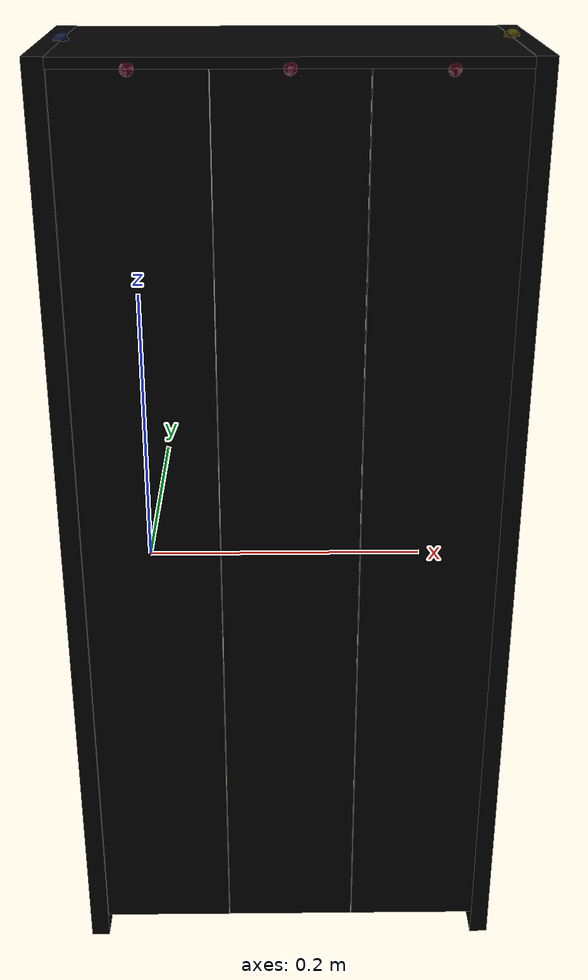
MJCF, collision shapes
<mujoco model="bookcase_flaerke_0403">
    <custom>
        <numeric data="-0.60657 0.18096 0.003607 0.706613 -0.706613 -0.026427 0.026427" name="0_part0_initpos"/>
        <numeric data="0.608335 -0.261698 0.003607 -0.005325 -0.0 0.0 -0.999986" name="10_part10_initpos"/>
        <numeric data="0.610186 -0.055603 0.003607 0.0 0.01776 -0.999842 0.0" name="9_part9_initpos"/>
        <numeric data="0.562264 0.239577 0.003607 0.693848 -0.0 -0.0 0.720122" name="8_part8_initpos"/>
        <numeric data="-0.122719 0.349128 0.003607 0.999813 -0.0 -0.0 -0.019363" name="7_part7_initpos"/>
        <numeric data="-0.432902 0.235927 0.003607 0.725286 0.0 -0.0 0.688448" name="6_part6_initpos"/>
        <numeric data="0.061007 0.132511 0.007103 0.707107 0.000528 0.707107 -0.000528" name="5_part5_initpos"/>
        <numeric data="0.017788 -0.371327 0.007244 0.70708 0.006167 -0.70708 0.006167" name="4_part4_initpos"/>
        <numeric data="0.001697 -0.057273 0.003607 0.501624 -0.501624 -0.498371 0.498371" name="3_part3_initpos"/>
        <numeric data="0.257014 0.346324 0.003607 1.0 0.0 -0.0 9.5e-05" name="2_part2_initpos"/>
        <numeric data="-0.016436 -0.19 0.003607 0.5 -0.5 -0.5 0.5" name="1_part1_initpos"/>
    </custom>
    <asset>
        <mesh file="bookcase_flaerke_0403/0.stl" name="part0"
              scale="0.00028638000000000003 0.00028638000000000003 0.00028638000000000003"/>
        <mesh file="bookcase_flaerke_0403/9.stl" name="part9"
              scale="0.00028638000000000003 0.00028638000000000003 0.00028638000000000003"/>
        <mesh file="bookcase_flaerke_0403/8.stl" name="part8"
              scale="0.00028638000000000003 0.00028638000000000003 0.00028638000000000003"/>
        <mesh file="bookcase_flaerke_0403/7.stl" name="part7"
              scale="0.00028638000000000003 0.00028638000000000003 0.00028638000000000003"/>
        <mesh file="bookcase_flaerke_0403/6.stl" name="part6"
              scale="0.00028638000000000003 0.00028638000000000003 0.00028638000000000003"/>
        <mesh file="bookcase_flaerke_0403/5.stl" name="part5"
              scale="0.00028638000000000003 0.00028638000000000003 0.00028638000000000003"/>
        <mesh file="bookcase_flaerke_0403/4.stl" name="part4"
              scale="0.00028638000000000003 0.00028638000000000003 0.00028638000000000003"/>
        <mesh file="bookcase_flaerke_0403/3.stl" name="part3"
              scale="0.00028638000000000003 0.00028638000000000003 0.00028638000000000003"/>
        <mesh file="bookcase_flaerke_0403/2.stl" name="part2"
              scale="0.00028638000000000003 0.00028638000000000003 0.00028638000000000003"/>
        <mesh file="bookcase_flaerke_0403/10.stl" name="part10"
              scale="0.00028638000000000003 0.00028638000000000003 0.00028638000000000003"/>
        <mesh file="bookcase_flaerke_0403/1.stl" name="part1"
              scale="0.00028638000000000003 0.00028638000000000003 0.00028638000000000003"/>
    </asset>
    <equality>
        <weld active="false" body1="7_part7" body2="5_part5" solimp="1 1 0.5" solref="0.01 0.3"/>
        <weld active="false" body1="3_part3" body2="7_part7" solimp="1 1 0.5" solref="0.01 0.3"/>
        <weld active="false" body1="0_part0" body2="7_part7" solimp="1 1 0.5" solref="0.01 0.3"/>
        <weld active="false" body1="1_part1" body2="7_part7" solimp="1 1 0.5" solref="0.01 0.3"/>
        <weld active="false" body1="2_part2" body2="5_part5" solimp="1 1 0.5" solref="0.01 0.3"/>
        <weld active="false" body1="10_part10" body2="5_part5" solimp="1 1 0.5" solref="0.01 0.3"/>
        <weld active="false" body1="6_part6" body2="5_part5" solimp="1 1 0.5" solref="0.01 0.3"/>
        <weld active="false" body1="8_part8" body2="5_part5" solimp="1 1 0.5" solref="0.01 0.3"/>
        <weld active="false" body1="9_part9" body2="5_part5" solimp="1 1 0.5" solref="0.01 0.3"/>
        <weld active="false" body1="7_part7" body2="4_part4" solimp="1 1 0.5" solref="0.01 0.3"/>
    </equality>
    <worldbody>
        <body name="0_part0" pos="0.0 0.0 0.0" quat="1 0 0 0">
            <geom conaffinity="0" contype="0" density="0" mesh="part0" name="0_part0_mesh" pos="0.0 0.0 0.0"
                  rgba="0.82 0.71 0.55 1" type="mesh"/>
            <site name="0_part0_horizontal_radius_site" pos="0.0 0.0 0.0" quat="1 0 0 0" rgba="0 0 0 0"
                  size="0.00028638000000000003"/>
            <site name="0_part0_top_site" pos="0.0 0.0 0.34915451696301597" quat="1 0 0 0" rgba="0 0 0 0"
                  size="0.00028638000000000003"/>
            <site name="0_part0_bottom_site" pos="0.0 0.0 -0.34915451696301597" quat="1 0 0 0" rgba="0 0 0 0"
                  size="0.00028638000000000003"/>
            <site name="0_part0_corner_site8" pos="-0.051767004220956 0.0036370260000000002 0.34915451696301597"
                  quat="1 0 0 0" rgba="0 0 0 0" size="0.0057276"/>
            <site name="0_part0_corner_site7" pos="0.051767004220956 0.0036370260000000002 0.34915451696301597"
                  quat="1 0 0 0" rgba="0 0 0 0" size="0.0057276"/>
            <site name="0_part0_corner_site6" pos="0.051767004220956 -0.0036370260000000002 0.34915451696301597"
                  quat="1 0 0 0" rgba="0 0 0 0" size="0.0057276"/>
            <site name="0_part0_corner_site5" pos="-0.051767004220956 -0.0036370260000000002 0.34915451696301597"
                  quat="1 0 0 0" rgba="0 0 0 0" size="0.0057276"/>
            <site name="0_part0_corner_site4" pos="-0.051767004220956 0.0036370260000000002 -0.34915451696301597"
                  quat="1 0 0 0" rgba="0 0 0 0" size="0.0057276"/>
            <site name="0_part0_corner_site3" pos="0.051767004220956 0.0036370260000000002 -0.34915451696301597"
                  quat="1 0 0 0" rgba="0 0 0 0" size="0.0057276"/>
            <site name="0_part0_corner_site2" pos="0.051767004220956 -0.0036370260000000002 -0.34915451696301597"
                  quat="1 0 0 0" rgba="0 0 0 0" size="0.0057276"/>
            <site name="0_part0_corner_site1" pos="-0.051767004220956 -0.0036370260000000002 -0.34915451696301597"
                  quat="1 0 0 0" rgba="0 0 0 0" size="0.0057276"/>
            <geom density="50" name="noviz_collision_0_part0_0" pos="0.0 0.0 -1.7182800000000005e-08" quat="1 0 0 0"
                  rgba="0 0 0 0" size="0.051766993854 0.0036370260000000002 0.34915449600000004" solref="0.001 1"
                  type="box"/>
            <site name="back-topshelf,0,180,conn_site3"
                  pos="-0.00025774200000000004 -0.0003150180000000001 0.34886811600000006" quat="1 0 0 0"
                  rgba="0.9019 0.0980 0.2941 0.3" size="0.0057276"/>
        </body>
        <body name="10_part10" pos="0.10389770963865001 0.08365159800000001 -0.205855680878712" quat="1 0 0 0">
            <geom conaffinity="0" contype="0" density="0" mesh="part9" name="10_part10_mesh" pos="0.0 0.0 0.0"
                  rgba="0.82 0.71 0.55 1" type="mesh"/>
            <site name="10_part10_horizontal_radius_site"
                  pos="1.1455200000000001e-10 -1.6896420000000004e-09 5.7276000000000006e-11" quat="1 0 0 0"
                  rgba="0 0 0 0" size="0.00028638000000000003"/>
            <site name="10_part10_top_site" pos="1.1455200000000001e-10 -1.6896420000000004e-09 0.003637030324338"
                  quat="1 0 0 0" rgba="0 0 0 0" size="0.00028638000000000003"/>
            <site name="10_part10_bottom_site" pos="1.1455200000000001e-10 -1.6896420000000004e-09 -0.003637030181148"
                  quat="1 0 0 0" rgba="0 0 0 0" size="0.00028638000000000003"/>
            <site name="10_part10_corner_site8" pos="-0.15639211788544805 0.080014570310358 0.003637030324338"
                  quat="1 0 0 0" rgba="0 0 0 0" size="0.0057276"/>
            <site name="10_part10_corner_site7" pos="0.15639211811455203 0.080014570310358 0.003637030324338"
                  quat="1 0 0 0" rgba="0 0 0 0" size="0.0057276"/>
            <site name="10_part10_corner_site6" pos="0.15639211811455203 -0.08001457368964202 0.003637030324338"
                  quat="1 0 0 0" rgba="0 0 0 0" size="0.0057276"/>
            <site name="10_part10_corner_site5" pos="-0.15639211788544805 -0.08001457368964202 0.003637030324338"
                  quat="1 0 0 0" rgba="0 0 0 0" size="0.0057276"/>
            <site name="10_part10_corner_site4" pos="-0.15639211788544805 0.080014570310358 -0.003637030181148"
                  quat="1 0 0 0" rgba="0 0 0 0" size="0.0057276"/>
            <site name="10_part10_corner_site3" pos="0.15639211811455203 0.080014570310358 -0.003637030181148"
                  quat="1 0 0 0" rgba="0 0 0 0" size="0.0057276"/>
            <site name="10_part10_corner_site2" pos="0.15639211811455203 -0.08001457368964202 -0.003637030181148"
                  quat="1 0 0 0" rgba="0 0 0 0" size="0.0057276"/>
            <site name="10_part10_corner_site1" pos="-0.15639211788544805 -0.08001457368964202 -0.003637030181148"
                  quat="1 0 0 0" rgba="0 0 0 0" size="0.0057276"/>
            <geom density="50" name="noviz_collision_10_part10_0" pos="0.0 0.0 -1.7182800000000005e-08" quat="1 0 0 0"
                  rgba="0 0 0 0" size="0.15639211800000002 0.080014572 0.003637011681" solref="0.001 1" type="box"/>
            <site name="shelf-leftwall,0,180,conn_site2"
                  pos="0.15556258969200001 -0.0018185158638000002 -0.0014834455362000003" quat="0.7071067 0 0.7071068 0"
                  rgba="0.2352 0.7058 0.2941 0.3" size="0.0057276"/>
        </body>
        <body name="9_part9" pos="0.10389770963865001 0.08365159800000001 0.073467912341538" quat="1 0 0 0">
            <geom conaffinity="0" contype="0" density="0" mesh="part8" name="9_part9_mesh" pos="0.0 0.0 0.0"
                  rgba="0.82 0.71 0.55 1" type="mesh"/>
            <site name="9_part9_horizontal_radius_site" pos="1.1455200000000001e-10 -1.6896420000000004e-09 0.0"
                  quat="1 0 0 0" rgba="0 0 0 0" size="0.00028638000000000003"/>
            <site name="9_part9_top_site" pos="1.1455200000000001e-10 -1.6896420000000004e-09 0.003637029493836"
                  quat="1 0 0 0" rgba="0 0 0 0" size="0.00028638000000000003"/>
            <site name="9_part9_bottom_site" pos="1.1455200000000001e-10 -1.6896420000000004e-09 -0.003637029493836"
                  quat="1 0 0 0" rgba="0 0 0 0" size="0.00028638000000000003"/>
            <site name="9_part9_corner_site8" pos="-0.15639211788544805 0.080014570310358 0.003637029493836"
                  quat="1 0 0 0" rgba="0 0 0 0" size="0.0057276"/>
            <site name="9_part9_corner_site7" pos="0.15639211811455203 0.080014570310358 0.003637029493836"
                  quat="1 0 0 0" rgba="0 0 0 0" size="0.0057276"/>
            <site name="9_part9_corner_site6" pos="0.15639211811455203 -0.08001457368964202 0.003637029493836"
                  quat="1 0 0 0" rgba="0 0 0 0" size="0.0057276"/>
            <site name="9_part9_corner_site5" pos="-0.15639211788544805 -0.08001457368964202 0.003637029493836"
                  quat="1 0 0 0" rgba="0 0 0 0" size="0.0057276"/>
            <site name="9_part9_corner_site4" pos="-0.15639211788544805 0.080014570310358 -0.003637029493836"
                  quat="1 0 0 0" rgba="0 0 0 0" size="0.0057276"/>
            <site name="9_part9_corner_site3" pos="0.15639211811455203 0.080014570310358 -0.003637029493836"
                  quat="1 0 0 0" rgba="0 0 0 0" size="0.0057276"/>
            <site name="9_part9_corner_site2" pos="0.15639211811455203 -0.08001457368964202 -0.003637029493836"
                  quat="1 0 0 0" rgba="0 0 0 0" size="0.0057276"/>
            <site name="9_part9_corner_site1" pos="-0.15639211788544805 -0.08001457368964202 -0.003637029493836"
                  quat="1 0 0 0" rgba="0 0 0 0" size="0.0057276"/>
            <geom density="50" name="noviz_collision_9_part9_0" pos="0.0 0.0 0.0" quat="1 0 0 0" rgba="0 0 0 0"
                  size="0.15639211800000002 0.080014572 0.0036370288638000008" solref="0.001 1" type="box"/>
            <site name="shelf-leftwall,0,180,conn_site4"
                  pos="0.156421729692 -0.0018185158638000002 -0.0033048108810000004" quat="0.7071067 0 0.7071068 0"
                  rgba="0.2352 0.7058 0.2941 0.3" size="0.0057276"/>
        </body>
        <body name="8_part8" pos="0.10389770963865001 0.08365159800000001 0.21312971984842202" quat="1 0 0 0">
            <geom conaffinity="0" contype="0" density="0" mesh="part7" name="8_part8_mesh" pos="0.0 0.0 0.0"
                  rgba="0.82 0.71 0.55 1" type="mesh"/>
            <site name="8_part8_horizontal_radius_site" pos="1.1455200000000001e-10 -1.6896420000000004e-09 -0.0"
                  quat="1 0 0 0" rgba="0 0 0 0" size="0.00028638000000000003"/>
            <site name="8_part8_top_site" pos="1.1455200000000001e-10 -1.6896420000000004e-09 0.003637035765558"
                  quat="1 0 0 0" rgba="0 0 0 0" size="0.00028638000000000003"/>
            <site name="8_part8_bottom_site" pos="1.1455200000000001e-10 -1.6896420000000004e-09 -0.003637035794196"
                  quat="1 0 0 0" rgba="0 0 0 0" size="0.00028638000000000003"/>
            <site name="8_part8_corner_site8" pos="-0.15639211788544805 0.080014570310358 0.003637035765558"
                  quat="1 0 0 0" rgba="0 0 0 0" size="0.0057276"/>
            <site name="8_part8_corner_site7" pos="0.15639211811455203 0.080014570310358 0.003637035765558"
                  quat="1 0 0 0" rgba="0 0 0 0" size="0.0057276"/>
            <site name="8_part8_corner_site6" pos="0.15639211811455203 -0.08001457368964202 0.003637035765558"
                  quat="1 0 0 0" rgba="0 0 0 0" size="0.0057276"/>
            <site name="8_part8_corner_site5" pos="-0.15639211788544805 -0.08001457368964202 0.003637035765558"
                  quat="1 0 0 0" rgba="0 0 0 0" size="0.0057276"/>
            <site name="8_part8_corner_site4" pos="-0.15639211788544805 0.080014570310358 -0.003637035794196"
                  quat="1 0 0 0" rgba="0 0 0 0" size="0.0057276"/>
            <site name="8_part8_corner_site3" pos="0.15639211811455203 0.080014570310358 -0.003637035794196"
                  quat="1 0 0 0" rgba="0 0 0 0" size="0.0057276"/>
            <site name="8_part8_corner_site2" pos="0.15639211811455203 -0.08001457368964202 -0.003637035794196"
                  quat="1 0 0 0" rgba="0 0 0 0" size="0.0057276"/>
            <site name="8_part8_corner_site1" pos="-0.15639211788544805 -0.08001457368964202 -0.003637035794196"
                  quat="1 0 0 0" rgba="0 0 0 0" size="0.0057276"/>
            <geom density="50" name="noviz_collision_8_part8_0" pos="0.0 0.0 0.0" quat="1 0 0 0" rgba="0 0 0 0"
                  size="0.15639211800000002 0.080014572 0.0036370288638000008" solref="0.001 1" type="box"/>
            <site name="shelf-leftwall,0,180,conn_site5"
                  pos="0.157280869692 -0.0018185158638000002 0.0010825249914000001" quat="0.7071067 0 0.7071068 0"
                  rgba="0.2352 0.7058 0.2941 0.3" size="0.0057276"/>
        </body>
        <body name="7_part7" pos="0.10389770963865001 0.080014573746918 0.352791508454226" quat="1 0 0 0">
            <geom conaffinity="0" contype="0" density="0" mesh="part6" name="7_part7_mesh" pos="0.0 0.0 0.0"
                  rgba="0.82 0.71 0.55 1" type="mesh"/>
            <site name="7_part7_horizontal_radius_site" pos="1.1455200000000001e-10 0.0 -0.0" quat="1 0 0 0"
                  rgba="0 0 0 0" size="0.00028638000000000003"/>
            <site name="7_part7_top_site" pos="1.1455200000000001e-10 0.0 0.0036370260000000002" quat="1 0 0 0"
                  rgba="0 0 0 0" size="0.00028638000000000003"/>
            <site name="7_part7_bottom_site" pos="1.1455200000000001e-10 0.0 -0.0036370260000000002" quat="1 0 0 0"
                  rgba="0 0 0 0" size="0.00028638000000000003"/>
            <site name="7_part7_corner_site8" pos="-0.15639211788544805 0.08365159974691799 0.0036370260000000002"
                  quat="1 0 0 0" rgba="0 0 0 0" size="0.0057276"/>
            <site name="7_part7_corner_site7" pos="0.15639211811455203 0.08365159974691799 0.0036370260000000002"
                  quat="1 0 0 0" rgba="0 0 0 0" size="0.0057276"/>
            <site name="7_part7_corner_site6" pos="0.15639211811455203 -0.08365159974691799 0.0036370260000000002"
                  quat="1 0 0 0" rgba="0 0 0 0" size="0.0057276"/>
            <site name="7_part7_corner_site5" pos="-0.15639211788544805 -0.08365159974691799 0.0036370260000000002"
                  quat="1 0 0 0" rgba="0 0 0 0" size="0.0057276"/>
            <site name="7_part7_corner_site4" pos="-0.15639211788544805 0.08365159974691799 -0.0036370260000000002"
                  quat="1 0 0 0" rgba="0 0 0 0" size="0.0057276"/>
            <site name="7_part7_corner_site3" pos="0.15639211811455203 0.08365159974691799 -0.0036370260000000002"
                  quat="1 0 0 0" rgba="0 0 0 0" size="0.0057276"/>
            <site name="7_part7_corner_site2" pos="0.15639211811455203 -0.08365159974691799 -0.0036370260000000002"
                  quat="1 0 0 0" rgba="0 0 0 0" size="0.0057276"/>
            <site name="7_part7_corner_site1" pos="-0.15639211788544805 -0.08365159974691799 -0.0036370260000000002"
                  quat="1 0 0 0" rgba="0 0 0 0" size="0.0057276"/>
            <geom density="50" name="noviz_collision_7_part7_0" pos="0.0 0.0 0.0" quat="1 0 0 0" rgba="0 0 0 0"
                  size="0.15639211800000002 0.08365159800000001 0.003637011681" solref="0.001 1" type="box"/>
            <site name="topshelf-leftwall,0,conn_site1"
                  pos="0.15676535705399997 0.017927390863799998 0.0031215849570000002" quat="0.7071067 0 0.7071068 0"
                  rgba="1.0 0.8823 0.0980 0.3" size="0.0057276"/>
            <site name="topshelf-rightwall,0,conn_site1" pos="-0.15653436294600004 0.0 0.002892466638"
                  quat="0.7071067 0 -0.7071068 0" rgba="0.2627 0.3882 0.8470 0.3" size="0.0057276"/>
            <site name="topshelf-back,0,180,conn_site3" pos="-0.10415546094600002 -0.08032959000000002 -0.003923391681"
                  quat="1 0 0 0" rgba="0.9019 0.0980 0.2941 0.3" size="0.0057276"/>
            <site name="topshelf-back,0,180,conn_site2"
                  pos="0.00018184557240000002 -0.08004321000000002 -0.003637011681" quat="1 0 0 0"
                  rgba="0.9019 0.0980 0.2941 0.3" size="0.0057276"/>
            <site name="topshelf-back,0,180,conn_site1" pos="0.105159681054 -0.080014572 -0.004553413362" quat="1 0 0 0"
                  rgba="0.9019 0.0980 0.2941 0.3" size="0.0057276"/>
        </body>
        <body name="6_part6" pos="0.10389770963865001 0.08365159800000001 -0.345517484003982" quat="1 0 0 0">
            <geom conaffinity="0" contype="0" density="0" mesh="part5" name="6_part6_mesh" pos="0.0 0.0 0.0"
                  rgba="0.82 0.71 0.55 1" type="mesh"/>
            <site name="6_part6_horizontal_radius_site"
                  pos="1.1455200000000001e-10 -1.6896420000000004e-09 -2.8638000000000003e-11" quat="1 0 0 0"
                  rgba="0 0 0 0" size="0.00028638000000000003"/>
            <site name="6_part6_top_site" pos="1.1455200000000001e-10 -1.6896420000000004e-09 0.0036370264295700005"
                  quat="1 0 0 0" rgba="0 0 0 0" size="0.00028638000000000003"/>
            <site name="6_part6_bottom_site" pos="1.1455200000000001e-10 -1.6896420000000004e-09 -0.0036370264868459995"
                  quat="1 0 0 0" rgba="0 0 0 0" size="0.00028638000000000003"/>
            <site name="6_part6_corner_site8" pos="-0.15639211788544805 0.080014570310358 0.0036370264295700005"
                  quat="1 0 0 0" rgba="0 0 0 0" size="0.0057276"/>
            <site name="6_part6_corner_site7" pos="0.15639211811455203 0.080014570310358 0.0036370264295700005"
                  quat="1 0 0 0" rgba="0 0 0 0" size="0.0057276"/>
            <site name="6_part6_corner_site6" pos="0.15639211811455203 -0.08001457368964202 0.0036370264295700005"
                  quat="1 0 0 0" rgba="0 0 0 0" size="0.0057276"/>
            <site name="6_part6_corner_site5" pos="-0.15639211788544805 -0.08001457368964202 0.0036370264295700005"
                  quat="1 0 0 0" rgba="0 0 0 0" size="0.0057276"/>
            <site name="6_part6_corner_site4" pos="-0.15639211788544805 0.080014570310358 -0.0036370264868459995"
                  quat="1 0 0 0" rgba="0 0 0 0" size="0.0057276"/>
            <site name="6_part6_corner_site3" pos="0.15639211811455203 0.080014570310358 -0.0036370264868459995"
                  quat="1 0 0 0" rgba="0 0 0 0" size="0.0057276"/>
            <site name="6_part6_corner_site2" pos="0.15639211811455203 -0.08001457368964202 -0.0036370264868459995"
                  quat="1 0 0 0" rgba="0 0 0 0" size="0.0057276"/>
            <site name="6_part6_corner_site1" pos="-0.15639211788544805 -0.08001457368964202 -0.0036370264868459995"
                  quat="1 0 0 0" rgba="0 0 0 0" size="0.0057276"/>
            <geom density="50" name="noviz_collision_6_part6_0" pos="0.0 0.0 0.0" quat="1 0 0 0" rgba="0 0 0 0"
                  size="0.15639211800000002 0.080014572 0.003637046046600001" solref="0.001 1" type="box"/>
            <site name="shelf-leftwall,0,180,conn_site1" pos="0.155763027054 -0.0018185158638000002 -0.0002577477276"
                  quat="0.7071067 0 0.7071068 0" rgba="0.2352 0.7058 0.2941 0.3" size="0.0057276"/>
        </body>
        <body name="5_part5" pos="0.2675638866263221 0.080014573746918 -0.007274065545774001" quat="1 0 0 0">
            <geom conaffinity="0" contype="0" density="0" mesh="part4" name="5_part5_mesh" pos="0.0 0.0 0.0"
                  rgba="0.82 0.71 0.55 1" type="mesh"/>
            <site name="5_part5_horizontal_radius_site" pos="0.0 0.0 0.0" quat="1 0 0 0" rgba="0 0 0 0"
                  size="0.00028638000000000003"/>
            <site name="5_part5_top_site" pos="0.0 0.0 0.3637026" quat="1 0 0 0" rgba="0 0 0 0"
                  size="0.00028638000000000003"/>
            <site name="5_part5_bottom_site" pos="0.0 0.0 -0.3637026" quat="1 0 0 0" rgba="0 0 0 0"
                  size="0.00028638000000000003"/>
            <site name="5_part5_corner_site8" pos="-0.007274058987672 0.08365159974691799 0.3637026" quat="1 0 0 0"
                  rgba="0 0 0 0" size="0.0057276"/>
            <site name="5_part5_corner_site7" pos="0.007274058987672 0.08365159974691799 0.3637026" quat="1 0 0 0"
                  rgba="0 0 0 0" size="0.0057276"/>
            <site name="5_part5_corner_site6" pos="0.007274058987672 -0.08365159974691799 0.3637026" quat="1 0 0 0"
                  rgba="0 0 0 0" size="0.0057276"/>
            <site name="5_part5_corner_site5" pos="-0.007274058987672 -0.08365159974691799 0.3637026" quat="1 0 0 0"
                  rgba="0 0 0 0" size="0.0057276"/>
            <site name="5_part5_corner_site4" pos="-0.007274058987672 0.08365159974691799 -0.3637026" quat="1 0 0 0"
                  rgba="0 0 0 0" size="0.0057276"/>
            <site name="5_part5_corner_site3" pos="0.007274058987672 0.08365159974691799 -0.3637026" quat="1 0 0 0"
                  rgba="0 0 0 0" size="0.0057276"/>
            <site name="5_part5_corner_site2" pos="0.007274058987672 -0.08365159974691799 -0.3637026" quat="1 0 0 0"
                  rgba="0 0 0 0" size="0.0057276"/>
            <site name="5_part5_corner_site1" pos="-0.007274058987672 -0.08365159974691799 -0.3637026" quat="1 0 0 0"
                  rgba="0 0 0 0" size="0.0057276"/>
            <geom density="50" name="noviz_collision_5_part5_0"
                  pos="-7.05296664e-05 8.20306872e-05 0.00019662850800000002" quat="1 0 0 0" rgba="0 0 0 0"
                  size="0.007203530925000001 0.083733617232 0.36389934306" solref="0.001 1" type="box"/>
            <site name="leftwall-shelf,0,180,conn_site5" pos="-0.0063853260822000005 0.0018185158638000002 0.221486292"
                  quat="0.7071067 0 0.7071068 0" rgba="0.2352 0.7058 0.2941 0.3" size="0.0057276"/>
            <site name="leftwall-shelf,0,180,conn_site4"
                  pos="-0.007244466082200001 0.0018185158638000002 0.07743718063800001" quat="0.7071067 0 0.7071068 0"
                  rgba="0.2352 0.7058 0.2941 0.3" size="0.0057276"/>
            <site name="leftwall-shelf,0,180,conn_site3"
                  pos="-0.007530846082200001 0.0018185158638000002 -0.058879699362" quat="0.7071067 0 0.7071068 0"
                  rgba="0.2352 0.7058 0.2941 0.3" size="0.0057276"/>
            <site name="leftwall-shelf,0,180,conn_site2"
                  pos="-0.008103606082200001 0.0018185158638000002 -0.20006506799999998" quat="0.7071067 0 0.7071068 0"
                  rgba="0.2352 0.7058 0.2941 0.3" size="0.0057276"/>
            <site name="leftwall-shelf,0,180,conn_site1" pos="-0.0079031372184 0.0018185158638000002 -0.33850116"
                  quat="0.7071067 0 0.7071068 0" rgba="0.2352 0.7058 0.2941 0.3" size="0.0057276"/>
            <site name="leftwall-topshelf,0,conn_site1" pos="-0.0069008072184 0.017927390863799998 0.36318711600000003"
                  quat="0.7071067 0 0.7071068 0" rgba="1.0 0.8823 0.0980 0.3" size="0.0057276"/>
        </body>
        <body name="4_part4" pos="-0.05976846036135001 0.080014573746918 -0.007274065545774001" quat="1 0 0 0">
            <geom conaffinity="0" contype="0" density="0" mesh="part3" name="4_part4_mesh" pos="0.0 0.0 0.0"
                  rgba="0.82 0.71 0.55 1" type="mesh"/>
            <site name="4_part4_horizontal_radius_site" pos="0.0 0.0 0.0" quat="1 0 0 0" rgba="0 0 0 0"
                  size="0.00028638000000000003"/>
            <site name="4_part4_top_site" pos="0.0 0.0 0.3637026" quat="1 0 0 0" rgba="0 0 0 0"
                  size="0.00028638000000000003"/>
            <site name="4_part4_bottom_site" pos="0.0 0.0 -0.3637026" quat="1 0 0 0" rgba="0 0 0 0"
                  size="0.00028638000000000003"/>
            <site name="4_part4_corner_site8" pos="-0.0072740520000000005 0.08365159974691799 0.3637026" quat="1 0 0 0"
                  rgba="0 0 0 0" size="0.0057276"/>
            <site name="4_part4_corner_site7" pos="0.0072740520000000005 0.08365159974691799 0.3637026" quat="1 0 0 0"
                  rgba="0 0 0 0" size="0.0057276"/>
            <site name="4_part4_corner_site6" pos="0.0072740520000000005 -0.08365159974691799 0.3637026" quat="1 0 0 0"
                  rgba="0 0 0 0" size="0.0057276"/>
            <site name="4_part4_corner_site5" pos="-0.0072740520000000005 -0.08365159974691799 0.3637026" quat="1 0 0 0"
                  rgba="0 0 0 0" size="0.0057276"/>
            <site name="4_part4_corner_site4" pos="-0.0072740520000000005 0.08365159974691799 -0.3637026" quat="1 0 0 0"
                  rgba="0 0 0 0" size="0.0057276"/>
            <site name="4_part4_corner_site3" pos="0.0072740520000000005 0.08365159974691799 -0.3637026" quat="1 0 0 0"
                  rgba="0 0 0 0" size="0.0057276"/>
            <site name="4_part4_corner_site2" pos="0.0072740520000000005 -0.08365159974691799 -0.3637026" quat="1 0 0 0"
                  rgba="0 0 0 0" size="0.0057276"/>
            <site name="4_part4_corner_site1" pos="-0.0072740520000000005 -0.08365159974691799 -0.3637026"
                  quat="1 0 0 0" rgba="0 0 0 0" size="0.0057276"/>
            <geom density="50" name="noviz_collision_4_part4_0"
                  pos="7.052107500000001e-05 8.20306872e-05 0.00019662850800000002" quat="1 0 0 0" rgba="0 0 0 0"
                  size="0.007344570211200001 0.083733617232 0.36389934306" solref="0.001 1" type="box"/>
            <site name="rightwall-topshelf,0,conn_site1" pos="0.007131818509200001 0.0 0.36295801200000005"
                  quat="0.7071067 0 -0.7071068 0" rgba="0.2627 0.3882 0.8470 0.3" size="0.0057276"/>
        </body>
        <body name="3_part3" pos="0.20852282341769401 0.0 0.0" quat="1 0 0 0">
            <geom conaffinity="0" contype="0" density="0" mesh="part2" name="3_part3_mesh" pos="0.0 0.0 0.0"
                  rgba="0.82 0.71 0.55 1" type="mesh"/>
            <site name="3_part3_horizontal_radius_site" pos="0.0 0.0 0.0" quat="1 0 0 0" rgba="0 0 0 0"
                  size="0.00028638000000000003"/>
            <site name="3_part3_top_site" pos="0.0 0.0 0.34915451696301597" quat="1 0 0 0" rgba="0 0 0 0"
                  size="0.00028638000000000003"/>
            <site name="3_part3_bottom_site" pos="0.0 0.0 -0.34915451696301597" quat="1 0 0 0" rgba="0 0 0 0"
                  size="0.00028638000000000003"/>
            <site name="3_part3_corner_site8" pos="-0.051767004220956 0.0036370260000000002 0.34915451696301597"
                  quat="1 0 0 0" rgba="0 0 0 0" size="0.0057276"/>
            <site name="3_part3_corner_site7" pos="0.051767004220956 0.0036370260000000002 0.34915451696301597"
                  quat="1 0 0 0" rgba="0 0 0 0" size="0.0057276"/>
            <site name="3_part3_corner_site6" pos="0.051767004220956 -0.0036370260000000002 0.34915451696301597"
                  quat="1 0 0 0" rgba="0 0 0 0" size="0.0057276"/>
            <site name="3_part3_corner_site5" pos="-0.051767004220956 -0.0036370260000000002 0.34915451696301597"
                  quat="1 0 0 0" rgba="0 0 0 0" size="0.0057276"/>
            <site name="3_part3_corner_site4" pos="-0.051767004220956 0.0036370260000000002 -0.34915451696301597"
                  quat="1 0 0 0" rgba="0 0 0 0" size="0.0057276"/>
            <site name="3_part3_corner_site3" pos="0.051767004220956 0.0036370260000000002 -0.34915451696301597"
                  quat="1 0 0 0" rgba="0 0 0 0" size="0.0057276"/>
            <site name="3_part3_corner_site2" pos="0.051767004220956 -0.0036370260000000002 -0.34915451696301597"
                  quat="1 0 0 0" rgba="0 0 0 0" size="0.0057276"/>
            <site name="3_part3_corner_site1" pos="-0.051767004220956 -0.0036370260000000002 -0.34915451696301597"
                  quat="1 0 0 0" rgba="0 0 0 0" size="0.0057276"/>
            <geom density="50" name="noviz_collision_3_part3_0" pos="0.0 0.0 -1.7182800000000005e-08" quat="1 0 0 0"
                  rgba="0 0 0 0" size="0.051767022492 0.0036370260000000002 0.34915449600000004" solref="0.001 1"
                  type="box"/>
            <site name="back-topshelf,0,180,conn_site1" pos="0.0005345683632 0.0 0.34823808" quat="1 0 0 0"
                  rgba="0.9019 0.0980 0.2941 0.3" size="0.0057276"/>
        </body>
        <body name="2_part2" pos="0.10389770963865001 0.08365159800000001 -0.066193874832366" quat="1 0 0 0">
            <geom conaffinity="0" contype="0" density="0" mesh="part10" name="2_part2_mesh" pos="0.0 0.0 0.0"
                  rgba="0.82 0.71 0.55 1" type="mesh"/>
            <site name="2_part2_horizontal_radius_site"
                  pos="1.1455200000000001e-10 -1.6896420000000004e-09 2.8638000000000003e-11" quat="1 0 0 0"
                  rgba="0 0 0 0" size="0.00028638000000000003"/>
            <site name="2_part2_top_site" pos="1.1455200000000001e-10 -1.6896420000000004e-09 0.0036370379706840003"
                  quat="1 0 0 0" rgba="0 0 0 0" size="0.00028638000000000003"/>
            <site name="2_part2_bottom_site" pos="1.1455200000000001e-10 -1.6896420000000004e-09 -0.0036370378847700004"
                  quat="1 0 0 0" rgba="0 0 0 0" size="0.00028638000000000003"/>
            <site name="2_part2_corner_site8" pos="-0.15639211788544805 0.080014570310358 0.0036370379706840003"
                  quat="1 0 0 0" rgba="0 0 0 0" size="0.0057276"/>
            <site name="2_part2_corner_site7" pos="0.15639211811455203 0.080014570310358 0.0036370379706840003"
                  quat="1 0 0 0" rgba="0 0 0 0" size="0.0057276"/>
            <site name="2_part2_corner_site6" pos="0.15639211811455203 -0.08001457368964202 0.0036370379706840003"
                  quat="1 0 0 0" rgba="0 0 0 0" size="0.0057276"/>
            <site name="2_part2_corner_site5" pos="-0.15639211788544805 -0.08001457368964202 0.0036370379706840003"
                  quat="1 0 0 0" rgba="0 0 0 0" size="0.0057276"/>
            <site name="2_part2_corner_site4" pos="-0.15639211788544805 0.080014570310358 -0.0036370378847700004"
                  quat="1 0 0 0" rgba="0 0 0 0" size="0.0057276"/>
            <site name="2_part2_corner_site3" pos="0.15639211811455203 0.080014570310358 -0.0036370378847700004"
                  quat="1 0 0 0" rgba="0 0 0 0" size="0.0057276"/>
            <site name="2_part2_corner_site2" pos="0.15639211811455203 -0.08001457368964202 -0.0036370378847700004"
                  quat="1 0 0 0" rgba="0 0 0 0" size="0.0057276"/>
            <site name="2_part2_corner_site1" pos="-0.15639211788544805 -0.08001457368964202 -0.0036370378847700004"
                  quat="1 0 0 0" rgba="0 0 0 0" size="0.0057276"/>
            <geom density="50" name="noviz_collision_2_part2_0" pos="0.0 0.0 -1.4319000000000002e-08" quat="1 0 0 0"
                  rgba="0 0 0 0" size="0.15639211800000002 0.080014572 0.0036370260000000002" solref="0.001 1"
                  type="box"/>
            <site name="shelf-leftwall,0,180,conn_site3"
                  pos="0.15613534969200002 -0.0018185158638000002 4.0093200000000004e-05" quat="0.7071067 0 0.7071068 0"
                  rgba="0.2352 0.7058 0.2941 0.3" size="0.0057276"/>
        </body>
        <body name="1_part1" pos="0.104261410405818 0.0 0.0" quat="1 0 0 0">
            <geom conaffinity="0" contype="0" density="0" mesh="part1" name="1_part1_mesh" pos="0.0 0.0 0.0"
                  rgba="0.82 0.71 0.55 1" type="mesh"/>
            <site name="1_part1_horizontal_radius_site" pos="1.030968e-09 0.0 0.0" quat="1 0 0 0" rgba="0 0 0 0"
                  size="0.00028638000000000003"/>
            <site name="1_part1_top_site" pos="1.030968e-09 0.0 0.34915451696301597" quat="1 0 0 0" rgba="0 0 0 0"
                  size="0.00028638000000000003"/>
            <site name="1_part1_bottom_site" pos="1.030968e-09 0.0 -0.34915451696301597" quat="1 0 0 0" rgba="0 0 0 0"
                  size="0.00028638000000000003"/>
            <site name="1_part1_corner_site8" pos="-0.051767004220956 0.0036370260000000002 0.34915451696301597"
                  quat="1 0 0 0" rgba="0 0 0 0" size="0.0057276"/>
            <site name="1_part1_corner_site7" pos="0.05176700625425401 0.0036370260000000002 0.34915451696301597"
                  quat="1 0 0 0" rgba="0 0 0 0" size="0.0057276"/>
            <site name="1_part1_corner_site6" pos="0.05176700625425401 -0.0036370260000000002 0.34915451696301597"
                  quat="1 0 0 0" rgba="0 0 0 0" size="0.0057276"/>
            <site name="1_part1_corner_site5" pos="-0.051767004220956 -0.0036370260000000002 0.34915451696301597"
                  quat="1 0 0 0" rgba="0 0 0 0" size="0.0057276"/>
            <site name="1_part1_corner_site4" pos="-0.051767004220956 0.0036370260000000002 -0.34915451696301597"
                  quat="1 0 0 0" rgba="0 0 0 0" size="0.0057276"/>
            <site name="1_part1_corner_site3" pos="0.05176700625425401 0.0036370260000000002 -0.34915451696301597"
                  quat="1 0 0 0" rgba="0 0 0 0" size="0.0057276"/>
            <site name="1_part1_corner_site2" pos="0.05176700625425401 -0.0036370260000000002 -0.34915451696301597"
                  quat="1 0 0 0" rgba="0 0 0 0" size="0.0057276"/>
            <site name="1_part1_corner_site1" pos="-0.051767004220956 -0.0036370260000000002 -0.34915451696301597"
                  quat="1 0 0 0" rgba="0 0 0 0" size="0.0057276"/>
            <geom density="50" name="noviz_collision_1_part1_0" pos="8.591400000000002e-09 0.0 -1.7182800000000005e-08"
                  quat="1 0 0 0" rgba="0 0 0 0" size="0.051767022492 0.0036370260000000002 0.34915449600000004"
                  solref="0.001 1" type="box"/>
            <site name="back-topshelf,0,180,conn_site2"
                  pos="-0.00018185416380000002 -2.8638000000000003e-05 0.34915449600000004" quat="1 0 0 0"
                  rgba="0.9019 0.0980 0.2941 0.3" size="0.0057276"/>
        </body>
    </worldbody>
    <actuator/>
    <sensor/>
    <contact/>
    <default/>
</mujoco>
